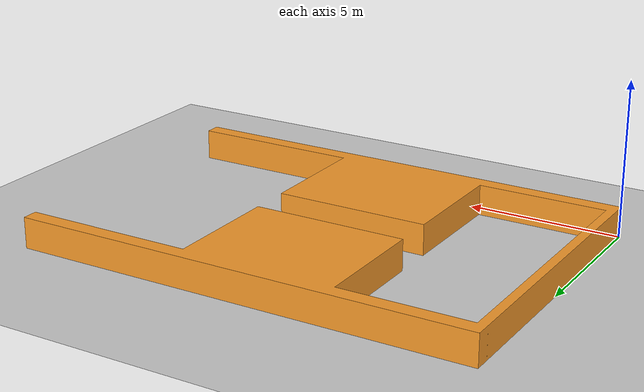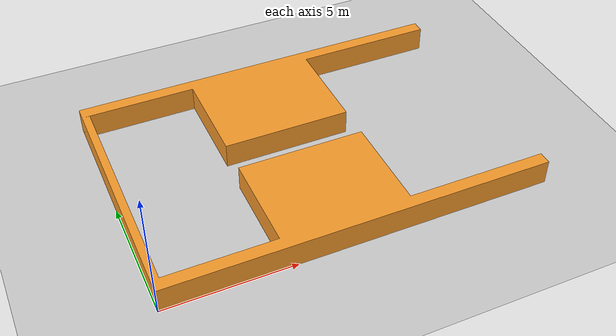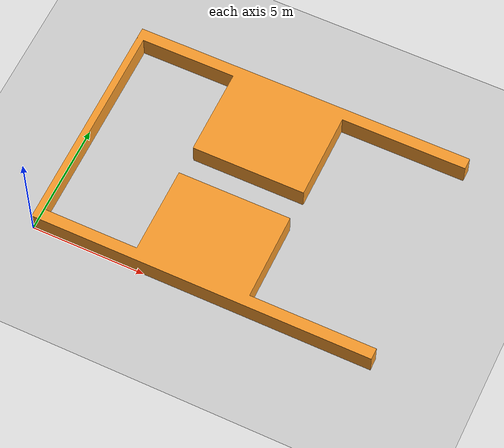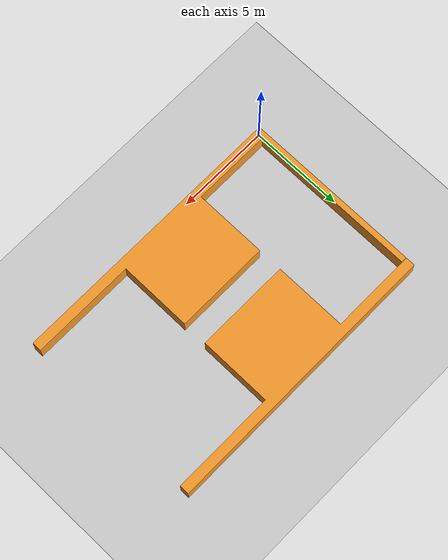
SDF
<?xml version="1.0"?>
<sdf version="1.8">
  <world name="namo_world">
    <physics type="ode">
      <gravity>0.000000 0.000000 -9.810000</gravity>
      <ode>
        <solver>
          <type>quick</type>
          <iters>20</iters>
          <sor>1.000000</sor>
        </solver>
        <constraints>
          <cfm>0.000000</cfm>
          <erp>0.200000</erp>
          <contact_max_correcting_vel>100.000000</contact_max_correcting_vel>
          <contact_surface_layer>0.000000</contact_surface_layer>
        </constraints>
      </ode>
      <real_time_update_rate>1000.000000</real_time_update_rate>
      <max_step_size>0.001000</max_step_size>
      <real_time_factor>1.000000</real_time_factor>
      <max_contacts>20</max_contacts>
    </physics>
    <plugin filename="libnamoros_gz.so" name="namoros_gz::Namo">
    </plugin>
    <plugin filename="libgz-sim-physics-system" name="gz::sim::systems::Physics">
    </plugin>
    <plugin filename="libgz-sim-user-commands-system" name="gz::sim::systems::UserCommands">
    </plugin>
    <plugin filename="libgz-sim-scene-broadcaster-system" name="gz::sim::systems::SceneBroadcaster">
    </plugin>
    <plugin filename="libgz-sim-sensors-system" name="gz::sim::systems::Sensors">
      <render_engine>ogre</render_engine>
    </plugin>
    <gui fullscreen="0">
      <!-- 3D scene -->
      <plugin filename="GzScene3D" name="NAMO World">
        <gui>
          <title>3D View</title>
          <property type="bool" key="showTitleBar">false</property>
          <property type="string" key="state">docked</property>
        </gui>

        <engine>ogre</engine>
        <scene>scene</scene>
        <background_color>0.8 0.8 0.8</background_color>
      </plugin>

      <!-- World control -->
      <plugin filename="WorldControl" name="World control">
        <gui>
          <title>World control</title>
          <property type="bool" key="showTitleBar">false</property>
          <property type="bool" key="resizable">false</property>
          <property type="double" key="height">72</property>
          <property type="double" key="width">121</property>
          <property type="double" key="z">1</property>

          <property type="string" key="state">floating</property>
          <anchors target="NAMO World">
            <line own="left" target="left" />
            <line own="bottom" target="bottom" />
          </anchors>
        </gui>

        <play_pause>true</play_pause>
        <step>true</step>
        <start_paused>false</start_paused>
        <service>/world/namo_world/control</service>
        <stats_topic>/world/namo_world/stats</stats_topic>
      </plugin>
      <plugin filename="ImageDisplay" name="Camera">
        <gui>
          <property key="topic" type="string">/camera</property>
        </gui>
      </plugin>
      <plugin filename="TapeMeasure" name="TapeMeasure">
      </plugin>
      <!-- World statistics -->
      <plugin filename="WorldStats" name="World stats">
        <gui>
          <title>World stats</title>
          <property type="bool" key="showTitleBar">false</property>
          <property type="bool" key="resizable">false</property>
          <property type="double" key="height">110</property>
          <property type="double" key="width">290</property>
          <property type="double" key="z">1</property>

          <property type="string" key="state">floating</property>
          <anchors target="3D View">
            <line own="right" target="right" />
            <line own="bottom" target="bottom" />
          </anchors>
        </gui>

        <sim_time>true</sim_time>
        <real_time>true</real_time>
        <real_time_factor>true</real_time_factor>
        <iterations>true</iterations>
        <topic>/world/namo_world/stats</topic>

      </plugin>

      <!-- Entity tree -->
      <plugin filename="EntityTree" name="Entity tree">
      </plugin>

      <plugin filename="VisualizeLidar" name="Visualize Lidar">
        <property type="string" key="topicList">scan</property>
      </plugin>

      <!-- KeyPublisher plugin-->
      <plugin filename="KeyPublisher" name="Key Publisher" />

      <plugin filename="TopicEcho" name="Topic Echo">
      </plugin>
    </gui>

    <light type="point" name="sun">
      <cast_shadows>false</cast_shadows>
      <pose>0 0 20 0 0 0</pose>
      <diffuse>1.0 1.0 1.0 1</diffuse>
      <specular>0.5 0.5 0.5 1</specular>
      <attenuation>
        <range>1000</range>
        <constant>0.999</constant>
        <linear>0.001</linear>
        <quadratic>0.0001</quadratic>
      </attenuation>
    </light>

    <model name="ground_plane">
      <frame name="map" attached_to="__model__">
        <pose>0 0 0 0 0 0</pose>        <!-- Specify the origin and orientation of the "map" frame -->
      </frame>
      <static>true</static>
      <link name="link">
        <collision name="collision">
          <geometry>
            <plane>
              <normal>0 0 1</normal>
              <size>100 100</size>
            </plane>
          </geometry>
          <surface>
            <friction>
              <ode>
                <mu>100</mu>
                <mu2>50</mu2>
              </ode>
              <torsional>
                <ode />
              </torsional>
            </friction>
            <contact>
              <ode />
            </contact>
            <bounce />
          </surface>
          <max_contacts>10</max_contacts>
        </collision>
        <visual name='visual'>
          <cast_shadows>0</cast_shadows>
          <geometry>
            <plane>
              <normal>0 0 1</normal>
              <size>100 100</size>
            </plane>
          </geometry>
          <material>
            <ambient>0.8 0.8 0.8 1</ambient>
            <diffuse>0.8 0.8 0.8 1</diffuse>
            <specular>0.8 0.8 0.8 1</specular>
          </material>
        </visual>
        <self_collide>0</self_collide>
        <enable_wind>0</enable_wind>
        <kinematic>0</kinematic>
      </link>
    </model>
    <model name="walls">
      <pose>0 0 0 0 0 0</pose>
      <static>true</static>
      <link name="walls">
        <visual name="visual">
          <geometry>
            <mesh>
              <uri>file://config/map_walls.stl</uri>
            </mesh>
          </geometry>

          <material>
            <ambient>0.96078431 0.6 0.16470588 1</ambient>
            <diffuse>0.96078431 0.6 0.16470588 1</diffuse>
            <specular>0.96078431 0.6 0.16470588 1</specular>
          </material>
        </visual>
        <collision name='collision'>
          <geometry>
            <mesh>
              <uri>file://config/map_walls.stl</uri>
            </mesh>
          </geometry>
        </collision>
      </link>
    </model>
  </world>
</sdf>
